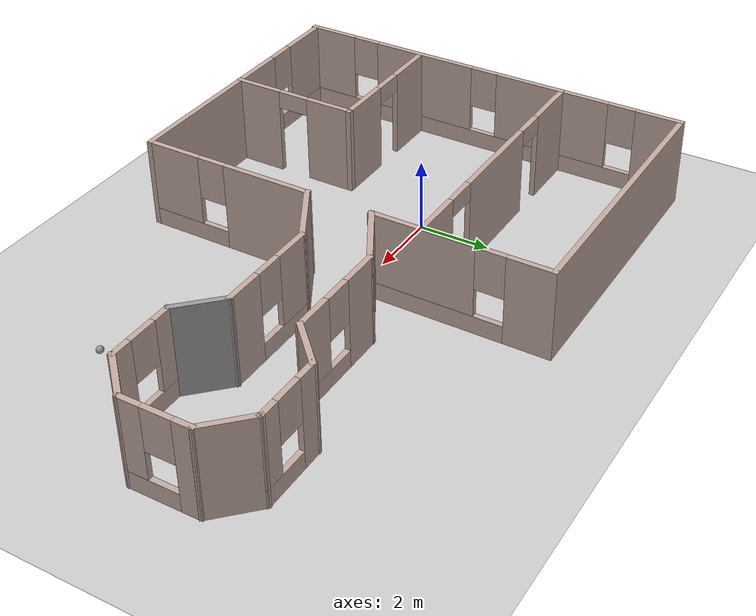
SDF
<sdf version="1.6">
 <world name="default">
  <light name="sun" type="directional">
   <pose>0 0 10 0 -0 0</pose>
   <diffuse>0.8 0.8 0.8 1</diffuse>
   <specular>0.2 0.2 0.2 1</specular>
   <attenuation>
    <range>1000</range>
    <constant>0.9</constant>
    <linear>0.01</linear>
    <quadratic>0.001</quadratic>
   </attenuation>
   <direction>-0.5 0.1 -0.9</direction>
  </light>
  <model name="ground_plane">
   <static>1</static>
   <link name="link">
    <collision name="collision">
     <geometry><plane><normal>0 0 1</normal><size>100 100</size></plane></geometry>
     <surface><friction><ode><mu>100</mu><mu2>50</mu2></ode></friction></surface>
    </collision>
    <visual name="visual">
     <cast_shadows>0</cast_shadows>
     <geometry><plane><normal>0 0 1</normal><size>100 100</size></plane></geometry>
     <material>
      <script><uri>file://media/materials/scripts/gazebo.material</uri><name>Gazebo/Grey</name></script>
     </material>
    </visual>
   </link>
  </model>
  <gravity>0 0 -9.8</gravity>
  <magnetic_field>6e-06 2.3e-05 -4.2e-05</magnetic_field>
  <atmosphere type="adiabatic"/>
  <physics name="default_physics" default="0" type="ode">
   <max_step_size>0.001</max_step_size>
   <real_time_factor>1</real_time_factor>
   <real_time_update_rate>1000</real_time_update_rate>
  </physics>
  <scene><ambient>0.4 0.4 0.4 1</ambient><background>0.7 0.7 0.7 1</background><shadows>1</shadows></scene>
  <spherical_coordinates>
   <surface_model>EARTH_WGS84</surface_model>
   <latitude_deg>0</latitude_deg>
   <longitude_deg>0</longitude_deg>
   <elevation>0</elevation>
   <heading_deg>0</heading_deg>
  </spherical_coordinates>
  <model name="building">
   <pose>3.47154 -0.46913 0 0 -0 0</pose>
   <link name="Wall_1">
    <collision name="Wall_1_Collision">
     <geometry><box><size>8 0.15 2.5</size></box></geometry>
     <pose>0 0 1.25 0 -0 0</pose>
    </collision>
    <visual name="Wall_1_Visual">
     <pose>0 0 1.25 0 -0 0</pose>
     <geometry><box><size>8 0.15 2.5</size></box></geometry>
     <material>
      <script><uri>file://media/materials/scripts/gazebo.material</uri><name>Gazebo/Grey</name></script>
      <ambient>0.760784 0.662745 0.627451 1</ambient>
     </material>
     <meta><layer>0</layer></meta>
    </visual>
    <pose>-4.1192 5.8 0 0 -0 0</pose>
   </link>
   <link name="Wall_10">
    <pose>6.13754 -0.929594 0 0 -0 3.14159</pose>
    <visual name="Wall_10_Visual_0">
     <pose>-0.698217 0 1.25 0 -0 0</pose>
     <geometry><box><size>0.603566 0.15 2.5</size></box></geometry>
     <material>
      <script><uri>file://media/materials/scripts/gazebo.material</uri><name>Gazebo/Grey</name></script>
      <ambient>0.760784 0.662745 0.627451 1</ambient>
     </material>
     <meta><layer>0</layer></meta>
    </visual>
    <collision name="Wall_10_Collision_0">
     <geometry><box><size>0.603566 0.15 2.5</size></box></geometry>
     <pose>-0.698217 0 1.25 0 -0 0</pose>
    </collision>
    <visual name="Wall_10_Visual_1">
     <pose>0.301783 0 0.25 0 -0 0</pose>
     <geometry><box><size>1.39643 0.15 0.5</size></box></geometry>
     <material>
      <script><uri>file://media/materials/scripts/gazebo.material</uri><name>Gazebo/Grey</name></script>
      <ambient>0.760784 0.662745 0.627451 1</ambient>
     </material>
     <meta><layer>0</layer></meta>
    </visual>
    <collision name="Wall_10_Collision_1">
     <geometry><box><size>1.39643 0.15 0.5</size></box></geometry>
     <pose>0.301783 0 0.25 0 -0 0</pose>
    </collision>
    <visual name="Wall_10_Visual_2">
     <pose>0.701783 0 1.5 0 -0 0</pose>
     <geometry><box><size>0.596434 0.15 2</size></box></geometry>
     <material>
      <script><uri>file://media/materials/scripts/gazebo.material</uri><name>Gazebo/Grey</name></script>
      <ambient>0.760784 0.662745 0.627451 1</ambient>
     </material>
     <meta><layer>0</layer></meta>
    </visual>
    <collision name="Wall_10_Collision_2">
     <geometry><box><size>0.596434 0.15 2</size></box></geometry>
     <pose>0.701783 0 1.5 0 -0 0</pose>
    </collision>
    <visual name="Wall_10_Visual_3">
     <pose>0.003566 0 1.9 0 -0 0</pose>
     <geometry><box><size>0.8 0.15 1.2</size></box></geometry>
     <material>
      <script><uri>file://media/materials/scripts/gazebo.material</uri><name>Gazebo/Grey</name></script>
      <ambient>0.760784 0.662745 0.627451 1</ambient>
     </material>
     <meta><layer>0</layer></meta>
    </visual>
    <collision name="Wall_10_Collision_3">
     <geometry><box><size>0.8 0.15 1.2</size></box></geometry>
     <pose>0.003566 0 1.9 0 -0 0</pose>
    </collision>
   </link>
   <link name="Wall_11">
    <collision name="Wall_11_Collision">
     <geometry><box><size>1.5 0.15 2.5</size></box></geometry>
     <pose>0 0 1.25 0 -0 0</pose>
    </collision>
    <visual name="Wall_11_Visual">
     <pose>0 0 1.25 0 -0 0</pose>
     <geometry><box><size>1.5 0.15 2.5</size></box></geometry>
     <material>
      <script><uri>file://media/materials/scripts/gazebo.material</uri><name>Gazebo/Grey</name></script>
      <ambient>1 1 1 1</ambient>
     </material>
     <meta><layer>0</layer></meta>
    </visual>
    <pose>4.73524 -0.452297 0 0 -0 2.35619</pose>
   </link>
   <link name="Wall_12">
    <pose>2.83295 0.025 0 0 -0 3.14159</pose>
    <visual name="Wall_12_Visual_0">
     <pose>-0.948642 0 1.25 0 -0 0</pose>
     <geometry><box><size>1.10272 0.15 2.5</size></box></geometry>
     <material>
      <script><uri>file://media/materials/scripts/gazebo.material</uri><name>Gazebo/Grey</name></script>
      <ambient>0.760784 0.662745 0.627451 1</ambient>
     </material>
     <meta><layer>0</layer></meta>
    </visual>
    <collision name="Wall_12_Collision_0">
     <geometry><box><size>1.10272 0.15 2.5</size></box></geometry>
     <pose>-0.948642 0 1.25 0 -0 0</pose>
    </collision>
    <visual name="Wall_12_Visual_1">
     <pose>0.551358 0 0.25 0 -0 0</pose>
     <geometry><box><size>1.89728 0.15 0.5</size></box></geometry>
     <material>
      <script><uri>file://media/materials/scripts/gazebo.material</uri><name>Gazebo/Grey</name></script>
      <ambient>0.760784 0.662745 0.627451 1</ambient>
     </material>
     <meta><layer>0</layer></meta>
    </visual>
    <collision name="Wall_12_Collision_1">
     <geometry><box><size>1.89728 0.15 0.5</size></box></geometry>
     <pose>0.551358 0 0.25 0 -0 0</pose>
    </collision>
    <visual name="Wall_12_Visual_2">
     <pose>0.951358 0 1.5 0 -0 0</pose>
     <geometry><box><size>1.09728 0.15 2</size></box></geometry>
     <material>
      <script><uri>file://media/materials/scripts/gazebo.material</uri><name>Gazebo/Grey</name></script>
      <ambient>0.760784 0.662745 0.627451 1</ambient>
     </material>
     <meta><layer>0</layer></meta>
    </visual>
    <collision name="Wall_12_Collision_2">
     <geometry><box><size>1.09728 0.15 2</size></box></geometry>
     <pose>0.951358 0 1.5 0 -0 0</pose>
    </collision>
    <visual name="Wall_12_Visual_3">
     <pose>0.002717 0 1.9 0 -0 0</pose>
     <geometry><box><size>0.8 0.15 1.2</size></box></geometry>
     <material>
      <script><uri>file://media/materials/scripts/gazebo.material</uri><name>Gazebo/Grey</name></script>
      <ambient>0.760784 0.662745 0.627451 1</ambient>
     </material>
     <meta><layer>0</layer></meta>
    </visual>
    <collision name="Wall_12_Collision_3">
     <geometry><box><size>0.8 0.15 1.2</size></box></geometry>
     <pose>0.002717 0 1.9 0 -0 0</pose>
    </collision>
   </link>
   <link name="Wall_13">
    <collision name="Wall_13_Collision">
     <geometry><box><size>2 0.15 2.5</size></box></geometry>
     <pose>0 0 1.25 0 -0 0</pose>
    </collision>
    <visual name="Wall_13_Visual">
     <pose>0 0 1.25 0 -0 0</pose>
     <geometry><box><size>2 0.15 2.5</size></box></geometry>
     <material>
      <script><uri>file://media/materials/scripts/gazebo.material</uri><name>Gazebo/Grey</name></script>
      <ambient>0.760784 0.662745 0.627451 1</ambient>
     </material>
     <meta><layer>0</layer></meta>
    </visual>
    <pose>0.606874 -0.4375 0 0 0 -2.61799</pose>
   </link>
   <link name="Wall_14">
    <pose>-0.194199 -3.325 0 0 0 -1.5708</pose>
    <visual name="Wall_14_Visual_0">
     <pose>-1.21303 0 1.25 0 -0 0</pose>
     <geometry><box><size>2.57394 0.15 2.5</size></box></geometry>
     <material>
      <script><uri>file://media/materials/scripts/gazebo.material</uri><name>Gazebo/Grey</name></script>
      <ambient>0.760784 0.662745 0.627451 1</ambient>
     </material>
     <meta><layer>0</layer></meta>
    </visual>
    <collision name="Wall_14_Collision_0">
     <geometry><box><size>2.57394 0.15 2.5</size></box></geometry>
     <pose>-1.21303 0 1.25 0 -0 0</pose>
    </collision>
    <visual name="Wall_14_Visual_1">
     <pose>1.28697 0 0.25 0 -0 0</pose>
     <geometry><box><size>2.42606 0.15 0.5</size></box></geometry>
     <material>
      <script><uri>file://media/materials/scripts/gazebo.material</uri><name>Gazebo/Grey</name></script>
      <ambient>0.760784 0.662745 0.627451 1</ambient>
     </material>
     <meta><layer>0</layer></meta>
    </visual>
    <collision name="Wall_14_Collision_1">
     <geometry><box><size>2.42606 0.15 0.5</size></box></geometry>
     <pose>1.28697 0 0.25 0 -0 0</pose>
    </collision>
    <visual name="Wall_14_Visual_2">
     <pose>1.68697 0 1.5 0 -0 0</pose>
     <geometry><box><size>1.62606 0.15 2</size></box></geometry>
     <material>
      <script><uri>file://media/materials/scripts/gazebo.material</uri><name>Gazebo/Grey</name></script>
      <ambient>0.760784 0.662745 0.627451 1</ambient>
     </material>
     <meta><layer>0</layer></meta>
    </visual>
    <collision name="Wall_14_Collision_2">
     <geometry><box><size>1.62606 0.15 2</size></box></geometry>
     <pose>1.68697 0 1.5 0 -0 0</pose>
    </collision>
    <visual name="Wall_14_Visual_3">
     <pose>0.473941 0 1.9 0 -0 0</pose>
     <geometry><box><size>0.8 0.15 1.2</size></box></geometry>
     <material>
      <script><uri>file://media/materials/scripts/gazebo.material</uri><name>Gazebo/Grey</name></script>
      <ambient>0.760784 0.662745 0.627451 1</ambient>
     </material>
     <meta><layer>0</layer></meta>
    </visual>
    <collision name="Wall_14_Collision_3">
     <geometry><box><size>0.8 0.15 1.2</size></box></geometry>
     <pose>0.473941 0 1.9 0 -0 0</pose>
    </collision>
   </link>
   <link name="Wall_15">
    <pose>-4.1192 -5.75 0 0 -0 3.14159</pose>
    <visual name="Wall_15_Visual_0">
     <pose>-1.20854 0 1.25 0 -0 0</pose>
     <geometry><box><size>5.58292 0.15 2.5</size></box></geometry>
     <material>
      <script><uri>file://media/materials/scripts/gazebo.material</uri><name>Gazebo/Grey</name></script>
      <ambient>0.760784 0.662745 0.627451 1</ambient>
     </material>
     <meta><layer>0</layer></meta>
    </visual>
    <collision name="Wall_15_Collision_0">
     <geometry><box><size>5.58292 0.15 2.5</size></box></geometry>
     <pose>-1.20854 0 1.25 0 -0 0</pose>
    </collision>
    <visual name="Wall_15_Visual_1">
     <pose>2.79146 0 0.25 0 -0 0</pose>
     <geometry><box><size>2.41708 0.15 0.5</size></box></geometry>
     <material>
      <script><uri>file://media/materials/scripts/gazebo.material</uri><name>Gazebo/Grey</name></script>
      <ambient>0.760784 0.662745 0.627451 1</ambient>
     </material>
     <meta><layer>0</layer></meta>
    </visual>
    <collision name="Wall_15_Collision_1">
     <geometry><box><size>2.41708 0.15 0.5</size></box></geometry>
     <pose>2.79146 0 0.25 0 -0 0</pose>
    </collision>
    <visual name="Wall_15_Visual_2">
     <pose>3.19146 0 1.5 0 -0 0</pose>
     <geometry><box><size>1.61708 0.15 2</size></box></geometry>
     <material>
      <script><uri>file://media/materials/scripts/gazebo.material</uri><name>Gazebo/Grey</name></script>
      <ambient>0.760784 0.662745 0.627451 1</ambient>
     </material>
     <meta><layer>0</layer></meta>
    </visual>
    <collision name="Wall_15_Collision_2">
     <geometry><box><size>1.61708 0.15 2</size></box></geometry>
     <pose>3.19146 0 1.5 0 -0 0</pose>
    </collision>
    <visual name="Wall_15_Visual_3">
     <pose>1.98292 0 1.9 0 -0 0</pose>
     <geometry><box><size>0.8 0.15 1.2</size></box></geometry>
     <material>
      <script><uri>file://media/materials/scripts/gazebo.material</uri><name>Gazebo/Grey</name></script>
      <ambient>0.760784 0.662745 0.627451 1</ambient>
     </material>
     <meta><layer>0</layer></meta>
    </visual>
    <collision name="Wall_15_Collision_3">
     <geometry><box><size>0.8 0.15 1.2</size></box></geometry>
     <pose>1.98292 0 1.9 0 -0 0</pose>
    </collision>
   </link>
   <link name="Wall_17">
    <pose>-8.0442 0 0 0 0 -1.5708</pose>
    <visual name="Wall_17_Visual_0">
     <pose>-5.19946 0 1.25 0 -0 0</pose>
     <geometry><box><size>1.35107 0.15 2.5</size></box></geometry>
     <material>
      <script><uri>file://media/materials/scripts/gazebo.material</uri><name>Gazebo/Grey</name></script>
      <ambient>0.760784 0.662745 0.627451 1</ambient>
     </material>
     <meta><layer>0</layer></meta>
    </visual>
    <collision name="Wall_17_Collision_0">
     <geometry><box><size>1.35107 0.15 2.5</size></box></geometry>
     <pose>-5.19946 0 1.25 0 -0 0</pose>
    </collision>
    <visual name="Wall_17_Visual_1">
     <pose>0.675536 0 0.25 0 -0 0</pose>
     <geometry><box><size>10.3989 0.15 0.5</size></box></geometry>
     <material>
      <script><uri>file://media/materials/scripts/gazebo.material</uri><name>Gazebo/Grey</name></script>
      <ambient>0.760784 0.662745 0.627451 1</ambient>
     </material>
     <meta><layer>0</layer></meta>
    </visual>
    <collision name="Wall_17_Collision_1">
     <geometry><box><size>10.3989 0.15 0.5</size></box></geometry>
     <pose>0.675536 0 0.25 0 -0 0</pose>
    </collision>
    <visual name="Wall_17_Visual_2">
     <pose>-2.0285 0 1.5 0 -0 0</pose>
     <geometry><box><size>3.39086 0.15 2</size></box></geometry>
     <material>
      <script><uri>file://media/materials/scripts/gazebo.material</uri><name>Gazebo/Grey</name></script>
      <ambient>0.760784 0.662745 0.627451 1</ambient>
     </material>
     <meta><layer>0</layer></meta>
    </visual>
    <collision name="Wall_17_Collision_2">
     <geometry><box><size>3.39086 0.15 2</size></box></geometry>
     <pose>-2.0285 0 1.5 0 -0 0</pose>
    </collision>
    <visual name="Wall_17_Visual_3">
     <pose>2.02471 0 1.5 0 -0 0</pose>
     <geometry><box><size>3.11555 0.15 2</size></box></geometry>
     <material>
      <script><uri>file://media/materials/scripts/gazebo.material</uri><name>Gazebo/Grey</name></script>
      <ambient>0.760784 0.662745 0.627451 1</ambient>
     </material>
     <meta><layer>0</layer></meta>
    </visual>
    <collision name="Wall_17_Collision_3">
     <geometry><box><size>3.11555 0.15 2</size></box></geometry>
     <pose>2.02471 0 1.5 0 -0 0</pose>
    </collision>
    <visual name="Wall_17_Visual_4">
     <pose>5.12874 0 1.5 0 -0 0</pose>
     <geometry><box><size>1.49252 0.15 2</size></box></geometry>
     <material>
      <script><uri>file://media/materials/scripts/gazebo.material</uri><name>Gazebo/Grey</name></script>
      <ambient>0.760784 0.662745 0.627451 1</ambient>
     </material>
     <meta><layer>0</layer></meta>
    </visual>
    <collision name="Wall_17_Collision_4">
     <geometry><box><size>1.49252 0.15 2</size></box></geometry>
     <pose>5.12874 0 1.5 0 -0 0</pose>
    </collision>
    <visual name="Wall_17_Visual_5">
     <pose>-4.12393 0 1.9 0 -0 0</pose>
     <geometry><box><size>0.8 0.15 1.2</size></box></geometry>
     <material>
      <script><uri>file://media/materials/scripts/gazebo.material</uri><name>Gazebo/Grey</name></script>
      <ambient>0.760784 0.662745 0.627451 1</ambient>
     </material>
     <meta><layer>0</layer></meta>
    </visual>
    <collision name="Wall_17_Collision_5">
     <geometry><box><size>0.8 0.15 1.2</size></box></geometry>
     <pose>-4.12393 0 1.9 0 -0 0</pose>
    </collision>
    <visual name="Wall_17_Visual_6">
     <pose>0.066933 0 1.9 0 -0 0</pose>
     <geometry><box><size>0.8 0.15 1.2</size></box></geometry>
     <material>
      <script><uri>file://media/materials/scripts/gazebo.material</uri><name>Gazebo/Grey</name></script>
      <ambient>0.760784 0.662745 0.627451 1</ambient>
     </material>
     <meta><layer>0</layer></meta>
    </visual>
    <collision name="Wall_17_Collision_6">
     <geometry><box><size>0.8 0.15 1.2</size></box></geometry>
     <pose>0.066933 0 1.9 0 -0 0</pose>
    </collision>
    <visual name="Wall_17_Visual_7">
     <pose>3.98248 0 1.9 0 -0 0</pose>
     <geometry><box><size>0.8 0.15 1.2</size></box></geometry>
     <material>
      <script><uri>file://media/materials/scripts/gazebo.material</uri><name>Gazebo/Grey</name></script>
      <ambient>0.760784 0.662745 0.627451 1</ambient>
     </material>
     <meta><layer>0</layer></meta>
    </visual>
    <collision name="Wall_17_Collision_7">
     <geometry><box><size>0.8 0.15 1.2</size></box></geometry>
     <pose>3.98248 0 1.9 0 -0 0</pose>
    </collision>
   </link>
   <link name="Wall_2">
    <pose>-0.194199 3.375 0 0 0 -1.5708</pose>
    <visual name="Wall_2_Visual_0">
     <pose>-1.85505 0 1.25 0 -0 0</pose>
     <geometry><box><size>1.28989 0.15 2.5</size></box></geometry>
     <material>
      <script><uri>file://media/materials/scripts/gazebo.material</uri><name>Gazebo/Grey</name></script>
      <ambient>0.760784 0.662745 0.627451 1</ambient>
     </material>
     <meta><layer>0</layer></meta>
    </visual>
    <collision name="Wall_2_Collision_0">
     <geometry><box><size>1.28989 0.15 2.5</size></box></geometry>
     <pose>-1.85505 0 1.25 0 -0 0</pose>
    </collision>
    <visual name="Wall_2_Visual_1">
     <pose>0.644945 0 0.25 0 -0 0</pose>
     <geometry><box><size>3.71011 0.15 0.5</size></box></geometry>
     <material>
      <script><uri>file://media/materials/scripts/gazebo.material</uri><name>Gazebo/Grey</name></script>
      <ambient>0.760784 0.662745 0.627451 1</ambient>
     </material>
     <meta><layer>0</layer></meta>
    </visual>
    <collision name="Wall_2_Collision_1">
     <geometry><box><size>3.71011 0.15 0.5</size></box></geometry>
     <pose>0.644945 0 0.25 0 -0 0</pose>
    </collision>
    <visual name="Wall_2_Visual_2">
     <pose>1.04495 0 1.5 0 -0 0</pose>
     <geometry><box><size>2.91011 0.15 2</size></box></geometry>
     <material>
      <script><uri>file://media/materials/scripts/gazebo.material</uri><name>Gazebo/Grey</name></script>
      <ambient>0.760784 0.662745 0.627451 1</ambient>
     </material>
     <meta><layer>0</layer></meta>
    </visual>
    <collision name="Wall_2_Collision_2">
     <geometry><box><size>2.91011 0.15 2</size></box></geometry>
     <pose>1.04495 0 1.5 0 -0 0</pose>
    </collision>
    <visual name="Wall_2_Visual_3">
     <pose>-0.810109 0 1.9 0 -0 0</pose>
     <geometry><box><size>0.8 0.15 1.2</size></box></geometry>
     <material>
      <script><uri>file://media/materials/scripts/gazebo.material</uri><name>Gazebo/Grey</name></script>
      <ambient>0.760784 0.662745 0.627451 1</ambient>
     </material>
     <meta><layer>0</layer></meta>
    </visual>
    <collision name="Wall_2_Collision_3">
     <geometry><box><size>0.8 0.15 1.2</size></box></geometry>
     <pose>-0.810109 0 1.9 0 -0 0</pose>
    </collision>
   </link>
   <link name="Wall_20">
    <pose>-4.14434 -3.95671 0 0 -0 1.5708</pose>
    <visual name="Wall_20_Visual_0">
     <pose>-1.16009 0 1.25 0 -0 0</pose>
     <geometry><box><size>1.42982 0.15 2.5</size></box></geometry>
     <material>
      <script><uri>file://media/materials/scripts/gazebo.material</uri><name>Gazebo/Grey</name></script>
      <ambient>0.760784 0.662745 0.627451 1</ambient>
     </material>
     <meta><layer>0</layer></meta>
    </visual>
    <collision name="Wall_20_Collision_0">
     <geometry><box><size>1.42982 0.15 2.5</size></box></geometry>
     <pose>-1.16009 0 1.25 0 -0 0</pose>
    </collision>
    <visual name="Wall_20_Visual_1">
     <pose>1.16491 0 1.25 0 -0 0</pose>
     <geometry><box><size>1.42018 0.15 2.5</size></box></geometry>
     <material>
      <script><uri>file://media/materials/scripts/gazebo.material</uri><name>Gazebo/Grey</name></script>
      <ambient>0.760784 0.662745 0.627451 1</ambient>
     </material>
     <meta><layer>0</layer></meta>
    </visual>
    <collision name="Wall_20_Collision_1">
     <geometry><box><size>1.42018 0.15 2.5</size></box></geometry>
     <pose>1.16491 0 1.25 0 -0 0</pose>
    </collision>
    <visual name="Wall_20_Visual_2">
     <pose>0.004823 0 2.25 0 -0 0</pose>
     <geometry><box><size>0.9 0.15 0.5</size></box></geometry>
     <material>
      <script><uri>file://media/materials/scripts/gazebo.material</uri><name>Gazebo/Grey</name></script>
      <ambient>0.760784 0.662745 0.627451 1</ambient>
     </material>
     <meta><layer>0</layer></meta>
    </visual>
    <collision name="Wall_20_Collision_2">
     <geometry><box><size>0.9 0.15 0.5</size></box></geometry>
     <pose>0.004823 0 2.25 0 -0 0</pose>
    </collision>
   </link>
   <link name="Wall_21">
    <pose>-6.06934 -2.15672 0 0 -0 3.14159</pose>
    <visual name="Wall_21_Visual_0">
     <pose>-1.20861 0 1.25 0 -0 0</pose>
     <geometry><box><size>1.58278 0.15 2.5</size></box></geometry>
     <material>
      <script><uri>file://media/materials/scripts/gazebo.material</uri><name>Gazebo/Grey</name></script>
      <ambient>0.760784 0.662745 0.627451 1</ambient>
     </material>
     <meta><layer>0</layer></meta>
    </visual>
    <collision name="Wall_21_Collision_0">
     <geometry><box><size>1.58278 0.15 2.5</size></box></geometry>
     <pose>-1.20861 0 1.25 0 -0 0</pose>
    </collision>
    <visual name="Wall_21_Visual_1">
     <pose>1.24139 0 1.25 0 -0 0</pose>
     <geometry><box><size>1.51723 0.15 2.5</size></box></geometry>
     <material>
      <script><uri>file://media/materials/scripts/gazebo.material</uri><name>Gazebo/Grey</name></script>
      <ambient>0.760784 0.662745 0.627451 1</ambient>
     </material>
     <meta><layer>0</layer></meta>
    </visual>
    <collision name="Wall_21_Collision_1">
     <geometry><box><size>1.51723 0.15 2.5</size></box></geometry>
     <pose>1.24139 0 1.25 0 -0 0</pose>
    </collision>
    <visual name="Wall_21_Visual_2">
     <pose>0.032775 0 2.25 0 -0 0</pose>
     <geometry><box><size>0.9 0.15 0.5</size></box></geometry>
     <material>
      <script><uri>file://media/materials/scripts/gazebo.material</uri><name>Gazebo/Grey</name></script>
      <ambient>0.760784 0.662745 0.627451 1</ambient>
     </material>
     <meta><layer>0</layer></meta>
    </visual>
    <collision name="Wall_21_Collision_2">
     <geometry><box><size>0.9 0.15 0.5</size></box></geometry>
     <pose>0.032775 0 2.25 0 -0 0</pose>
    </collision>
   </link>
   <link name="Wall_23">
    <pose>-4.1232 2.3191 0 0 -0 3.14159</pose>
    <visual name="Wall_23_Visual_0">
     <pose>-3.2392 0 1.25 0 -0 0</pose>
     <geometry><box><size>1.52159 0.15 2.5</size></box></geometry>
     <material>
      <script><uri>file://media/materials/scripts/gazebo.material</uri><name>Gazebo/Grey</name></script>
      <ambient>0.760784 0.662745 0.627451 1</ambient>
     </material>
     <meta><layer>0</layer></meta>
    </visual>
    <collision name="Wall_23_Collision_0">
     <geometry><box><size>1.52159 0.15 2.5</size></box></geometry>
     <pose>-3.2392 0 1.25 0 -0 0</pose>
    </collision>
    <visual name="Wall_23_Visual_1">
     <pose>-0.101222 0 1.25 0 -0 0</pose>
     <geometry><box><size>2.95437 0.15 2.5</size></box></geometry>
     <material>
      <script><uri>file://media/materials/scripts/gazebo.material</uri><name>Gazebo/Grey</name></script>
      <ambient>0.760784 0.662745 0.627451 1</ambient>
     </material>
     <meta><layer>0</layer></meta>
    </visual>
    <collision name="Wall_23_Collision_1">
     <geometry><box><size>2.95437 0.15 2.5</size></box></geometry>
     <pose>-0.101222 0 1.25 0 -0 0</pose>
    </collision>
    <visual name="Wall_23_Visual_2">
     <pose>3.13798 0 1.25 0 -0 0</pose>
     <geometry><box><size>1.72404 0.15 2.5</size></box></geometry>
     <material>
      <script><uri>file://media/materials/scripts/gazebo.material</uri><name>Gazebo/Grey</name></script>
      <ambient>0.760784 0.662745 0.627451 1</ambient>
     </material>
     <meta><layer>0</layer></meta>
    </visual>
    <collision name="Wall_23_Collision_2">
     <geometry><box><size>1.72404 0.15 2.5</size></box></geometry>
     <pose>3.13798 0 1.25 0 -0 0</pose>
    </collision>
    <visual name="Wall_23_Visual_3">
     <pose>-2.02841 0 2.25 0 -0 0</pose>
     <geometry><box><size>0.9 0.15 0.5</size></box></geometry>
     <material>
      <script><uri>file://media/materials/scripts/gazebo.material</uri><name>Gazebo/Grey</name></script>
      <ambient>0.760784 0.662745 0.627451 1</ambient>
     </material>
     <meta><layer>0</layer></meta>
    </visual>
    <collision name="Wall_23_Collision_3">
     <geometry><box><size>0.9 0.15 0.5</size></box></geometry>
     <pose>-2.02841 0 2.25 0 -0 0</pose>
    </collision>
    <visual name="Wall_23_Visual_4">
     <pose>1.82596 0 2.25 0 -0 0</pose>
     <geometry><box><size>0.9 0.15 0.5</size></box></geometry>
     <material>
      <script><uri>file://media/materials/scripts/gazebo.material</uri><name>Gazebo/Grey</name></script>
      <ambient>0.760784 0.662745 0.627451 1</ambient>
     </material>
     <meta><layer>0</layer></meta>
    </visual>
    <collision name="Wall_23_Collision_4">
     <geometry><box><size>0.9 0.15 0.5</size></box></geometry>
     <pose>1.82596 0 2.25 0 -0 0</pose>
    </collision>
   </link>
   <link name="Wall_3">
    <collision name="Wall_3_Collision">
     <geometry><box><size>2 0.15 2.5</size></box></geometry>
     <pose>0 0 1.25 0 -0 0</pose>
    </collision>
    <visual name="Wall_3_Visual">
     <pose>0 0 1.25 0 -0 0</pose>
     <geometry><box><size>2 0.15 2.5</size></box></geometry>
     <material>
      <script><uri>file://media/materials/scripts/gazebo.material</uri><name>Gazebo/Grey</name></script>
      <ambient>0.760784 0.662745 0.627451 1</ambient>
     </material>
     <meta><layer>0</layer></meta>
    </visual>
    <pose>0.606874 1.4125 0 0 -0 0.523599</pose>
   </link>
   <link name="Wall_4">
    <pose>2.83295 1.875 0 0 -0 0</pose>
    <visual name="Wall_4_Visual_0">
     <pose>-0.951358 0 1.25 0 -0 0</pose>
     <geometry><box><size>1.09728 0.15 2.5</size></box></geometry>
     <material>
      <script><uri>file://media/materials/scripts/gazebo.material</uri><name>Gazebo/Grey</name></script>
      <ambient>0.760784 0.662745 0.627451 1</ambient>
     </material>
     <meta><layer>0</layer></meta>
    </visual>
    <collision name="Wall_4_Collision_0">
     <geometry><box><size>1.09728 0.15 2.5</size></box></geometry>
     <pose>-0.951358 0 1.25 0 -0 0</pose>
    </collision>
    <visual name="Wall_4_Visual_1">
     <pose>0.548642 0 0.25 0 -0 0</pose>
     <geometry><box><size>1.90272 0.15 0.5</size></box></geometry>
     <material>
      <script><uri>file://media/materials/scripts/gazebo.material</uri><name>Gazebo/Grey</name></script>
      <ambient>0.760784 0.662745 0.627451 1</ambient>
     </material>
     <meta><layer>0</layer></meta>
    </visual>
    <collision name="Wall_4_Collision_1">
     <geometry><box><size>1.90272 0.15 0.5</size></box></geometry>
     <pose>0.548642 0 0.25 0 -0 0</pose>
    </collision>
    <visual name="Wall_4_Visual_2">
     <pose>0.948642 0 1.5 0 -0 0</pose>
     <geometry><box><size>1.10272 0.15 2</size></box></geometry>
     <material>
      <script><uri>file://media/materials/scripts/gazebo.material</uri><name>Gazebo/Grey</name></script>
      <ambient>0.760784 0.662745 0.627451 1</ambient>
     </material>
     <meta><layer>0</layer></meta>
    </visual>
    <collision name="Wall_4_Collision_2">
     <geometry><box><size>1.10272 0.15 2</size></box></geometry>
     <pose>0.948642 0 1.5 0 -0 0</pose>
    </collision>
    <visual name="Wall_4_Visual_3">
     <pose>-0.002717 0 1.9 0 -0 0</pose>
     <geometry><box><size>0.8 0.15 1.2</size></box></geometry>
     <material>
      <script><uri>file://media/materials/scripts/gazebo.material</uri><name>Gazebo/Grey</name></script>
      <ambient>0.760784 0.662745 0.627451 1</ambient>
     </material>
     <meta><layer>0</layer></meta>
    </visual>
    <collision name="Wall_4_Collision_3">
     <geometry><box><size>0.8 0.15 1.2</size></box></geometry>
     <pose>-0.002717 0 1.9 0 -0 0</pose>
    </collision>
   </link>
   <link name="Wall_5">
    <collision name="Wall_5_Collision">
     <geometry><box><size>1.5 0.15 2.5</size></box></geometry>
     <pose>0 0 1.25 0 -0 0</pose>
    </collision>
    <visual name="Wall_5_Visual">
     <pose>0 0 1.25 0 -0 0</pose>
     <geometry><box><size>1.5 0.15 2.5</size></box></geometry>
     <material>
      <script><uri>file://media/materials/scripts/gazebo.material</uri><name>Gazebo/Grey</name></script>
      <ambient>0.760784 0.662745 0.627451 1</ambient>
     </material>
     <meta><layer>0</layer></meta>
    </visual>
    <pose>4.73524 2.3523 0 0 -0 0.785398</pose>
   </link>
   <link name="Wall_6">
    <pose>6.13754 2.82959 0 0 -0 0</pose>
    <visual name="Wall_6_Visual_0">
     <pose>-0.686488 0 1.25 0 -0 0</pose>
     <geometry><box><size>0.627024 0.15 2.5</size></box></geometry>
     <material>
      <script><uri>file://media/materials/scripts/gazebo.material</uri><name>Gazebo/Grey</name></script>
      <ambient>0.760784 0.662745 0.627451 1</ambient>
     </material>
     <meta><layer>0</layer></meta>
    </visual>
    <collision name="Wall_6_Collision_0">
     <geometry><box><size>0.627024 0.15 2.5</size></box></geometry>
     <pose>-0.686488 0 1.25 0 -0 0</pose>
    </collision>
    <visual name="Wall_6_Visual_1">
     <pose>0.313512 0 0.25 0 -0 0</pose>
     <geometry><box><size>1.37298 0.15 0.5</size></box></geometry>
     <material>
      <script><uri>file://media/materials/scripts/gazebo.material</uri><name>Gazebo/Grey</name></script>
      <ambient>0.760784 0.662745 0.627451 1</ambient>
     </material>
     <meta><layer>0</layer></meta>
    </visual>
    <collision name="Wall_6_Collision_1">
     <geometry><box><size>1.37298 0.15 0.5</size></box></geometry>
     <pose>0.313512 0 0.25 0 -0 0</pose>
    </collision>
    <visual name="Wall_6_Visual_2">
     <pose>0.713512 0 1.5 0 -0 0</pose>
     <geometry><box><size>0.572976 0.15 2</size></box></geometry>
     <material>
      <script><uri>file://media/materials/scripts/gazebo.material</uri><name>Gazebo/Grey</name></script>
      <ambient>0.760784 0.662745 0.627451 1</ambient>
     </material>
     <meta><layer>0</layer></meta>
    </visual>
    <collision name="Wall_6_Collision_2">
     <geometry><box><size>0.572976 0.15 2</size></box></geometry>
     <pose>0.713512 0 1.5 0 -0 0</pose>
    </collision>
    <visual name="Wall_6_Visual_3">
     <pose>0.027024 0 1.9 0 -0 0</pose>
     <geometry><box><size>0.8 0.15 1.2</size></box></geometry>
     <material>
      <script><uri>file://media/materials/scripts/gazebo.material</uri><name>Gazebo/Grey</name></script>
      <ambient>0.760784 0.662745 0.627451 1</ambient>
     </material>
     <meta><layer>0</layer></meta>
    </visual>
    <collision name="Wall_6_Collision_3">
     <geometry><box><size>0.8 0.15 1.2</size></box></geometry>
     <pose>0.027024 0 1.9 0 -0 0</pose>
    </collision>
   </link>
   <link name="Wall_7">
    <collision name="Wall_7_Collision">
     <geometry><box><size>1.5 0.15 2.5</size></box></geometry>
     <pose>0 0 1.25 0 -0 0</pose>
    </collision>
    <visual name="Wall_7_Visual">
     <pose>0 0 1.25 0 -0 0</pose>
     <geometry><box><size>1.5 0.15 2.5</size></box></geometry>
     <material>
      <script><uri>file://media/materials/scripts/gazebo.material</uri><name>Gazebo/Grey</name></script>
      <ambient>0.760784 0.662745 0.627451 1</ambient>
     </material>
     <meta><layer>0</layer></meta>
    </visual>
    <pose>7.53984 2.3523 0 0 0 -0.785398</pose>
   </link>
   <link name="Wall_8">
    <pose>8.01714 0.95 0 0 0 -1.5708</pose>
    <visual name="Wall_8_Visual_0">
     <pose>-0.726863 0 1.25 0 -0 0</pose>
     <geometry><box><size>0.546275 0.15 2.5</size></box></geometry>
     <material>
      <script><uri>file://media/materials/scripts/gazebo.material</uri><name>Gazebo/Grey</name></script>
      <ambient>0.760784 0.662745 0.627451 1</ambient>
     </material>
     <meta><layer>0</layer></meta>
    </visual>
    <collision name="Wall_8_Collision_0">
     <geometry><box><size>0.546275 0.15 2.5</size></box></geometry>
     <pose>-0.726863 0 1.25 0 -0 0</pose>
    </collision>
    <visual name="Wall_8_Visual_1">
     <pose>0.273137 0 0.25 0 -0 0</pose>
     <geometry><box><size>1.45372 0.15 0.5</size></box></geometry>
     <material>
      <script><uri>file://media/materials/scripts/gazebo.material</uri><name>Gazebo/Grey</name></script>
      <ambient>0.760784 0.662745 0.627451 1</ambient>
     </material>
     <meta><layer>0</layer></meta>
    </visual>
    <collision name="Wall_8_Collision_1">
     <geometry><box><size>1.45372 0.15 0.5</size></box></geometry>
     <pose>0.273137 0 0.25 0 -0 0</pose>
    </collision>
    <visual name="Wall_8_Visual_2">
     <pose>0.673137 0 1.5 0 -0 0</pose>
     <geometry><box><size>0.653725 0.15 2</size></box></geometry>
     <material>
      <script><uri>file://media/materials/scripts/gazebo.material</uri><name>Gazebo/Grey</name></script>
      <ambient>0.760784 0.662745 0.627451 1</ambient>
     </material>
     <meta><layer>0</layer></meta>
    </visual>
    <collision name="Wall_8_Collision_2">
     <geometry><box><size>0.653725 0.15 2</size></box></geometry>
     <pose>0.673137 0 1.5 0 -0 0</pose>
    </collision>
    <visual name="Wall_8_Visual_3">
     <pose>-0.053725 0 1.9 0 -0 0</pose>
     <geometry><box><size>0.8 0.15 1.2</size></box></geometry>
     <material>
      <script><uri>file://media/materials/scripts/gazebo.material</uri><name>Gazebo/Grey</name></script>
      <ambient>0.760784 0.662745 0.627451 1</ambient>
     </material>
     <meta><layer>0</layer></meta>
    </visual>
    <collision name="Wall_8_Collision_3">
     <geometry><box><size>0.8 0.15 1.2</size></box></geometry>
     <pose>-0.053725 0 1.9 0 -0 0</pose>
    </collision>
   </link>
   <link name="Wall_9">
    <collision name="Wall_9_Collision">
     <geometry><box><size>1.5 0.15 2.5</size></box></geometry>
     <pose>0 0 1.25 0 -0 0</pose>
    </collision>
    <visual name="Wall_9_Visual">
     <pose>0 0 1.25 0 -0 0</pose>
     <geometry><box><size>1.5 0.15 2.5</size></box></geometry>
     <material>
      <script><uri>file://media/materials/scripts/gazebo.material</uri><name>Gazebo/Grey</name></script>
      <ambient>0.760784 0.662745 0.627451 1</ambient>
     </material>
     <meta><layer>0</layer></meta>
    </visual>
    <pose>7.53984 -0.452297 0 0 0 -2.35619</pose>
   </link>
   <static>1</static>
  </model>
  <model name="ball">
   <link name="link_1">
    <inertial>
     <mass>1</mass>
     <inertia><ixx>0.1</ixx><ixy>0</ixy><ixz>0</ixz><iyy>0.1</iyy><iyz>0</iyz><izz>0.1</izz></inertia>
    </inertial>
    <visual name="visual">
     <geometry><sphere><radius>0.1</radius></sphere></geometry>
     <material>
      <lighting>1</lighting>
      <script><uri>file://media/materials/scripts/gazebo.material</uri><name>Gazebo/Grey</name></script>
      <shader type="pixel"><normal_map>__default__</normal_map></shader>
      <ambient>1 1 1 1</ambient>
      <diffuse>1 1 1 1</diffuse>
      <specular>1 1 1 1</specular>
      <emissive>1 1 1 1</emissive>
     </material>
    </visual>
    <collision name="collision">
     <geometry><sphere><radius>0.1</radius></sphere></geometry>
     <surface>
      <friction>
       <ode><mu>1</mu><mu2>1</mu2><fdir1>0 0 0</fdir1><slip1>0</slip1><slip2>0</slip2></ode>
       <torsional>
        <coefficient>1</coefficient>
        <patch_radius>0</patch_radius>
        <surface_radius>0</surface_radius>
        <use_patch_radius>1</use_patch_radius>
        <ode><slip>0</slip></ode>
       </torsional>
      </friction>
      <bounce><restitution_coefficient>0</restitution_coefficient><threshold>1e+06</threshold></bounce>
      <contact>
       <collide_without_contact>0</collide_without_contact>
       <collide_without_contact_bitmask>1</collide_without_contact_bitmask>
       <collide_bitmask>1</collide_bitmask>
       <ode>
        <soft_cfm>0</soft_cfm>
        <soft_erp>0.2</soft_erp>
        <kp>1e+13</kp>
        <kd>1</kd>
        <max_vel>0.01</max_vel>
        <min_depth>0</min_depth>
       </ode>
       <bullet>
        <split_impulse>1</split_impulse>
        <split_impulse_penetration_threshold>-0.01</split_impulse_penetration_threshold>
        <soft_cfm>0</soft_cfm>
        <soft_erp>0.2</soft_erp>
        <kp>1e+13</kp>
        <kd>1</kd>
       </bullet>
      </contact>
     </surface>
    </collision>
   </link>
   <static>0</static>
   <pose>8.41886 -3.91454 0.1 0 -0 0</pose>
  </model>
 </world>
</sdf>
